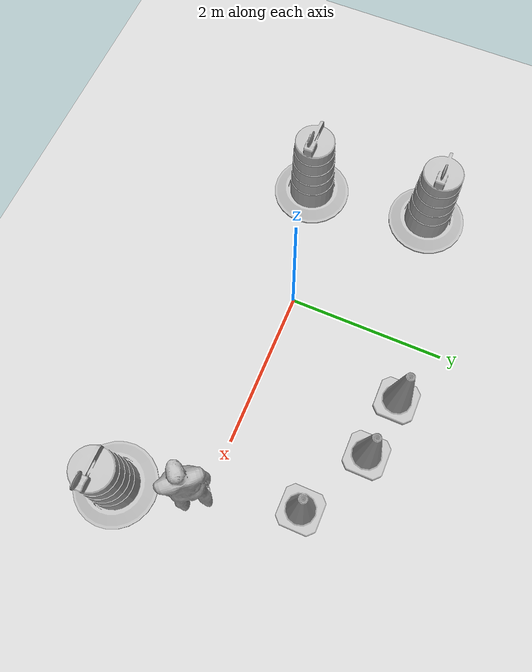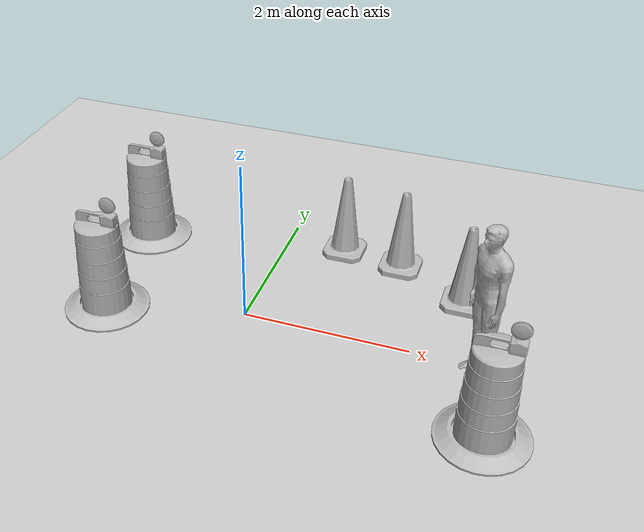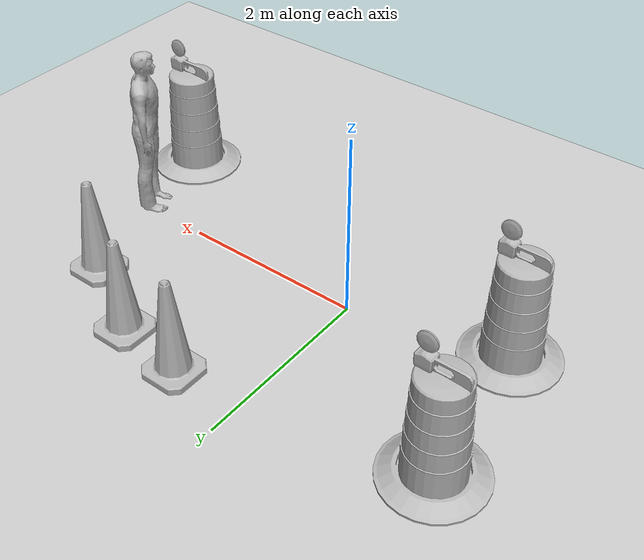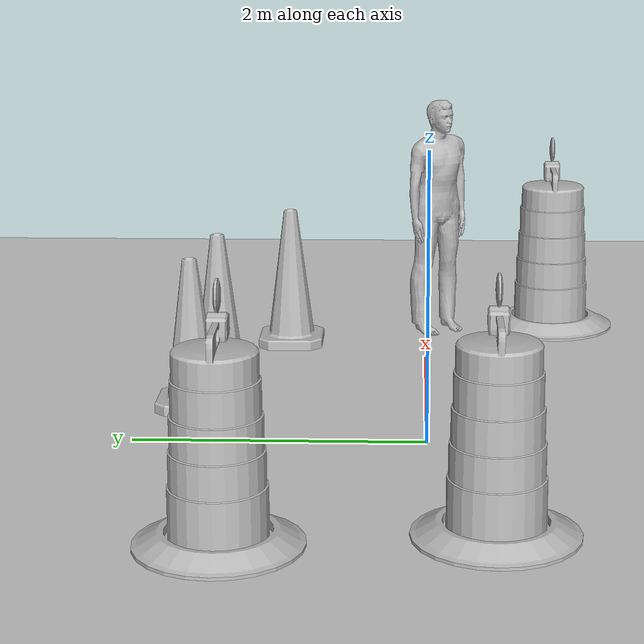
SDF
<sdf version="1.7">
 <world name="default">
  <light name="sun" type="directional">
   <pose>0 0 10 0 -0 0</pose>
   <diffuse>0.8 0.8 0.8 1</diffuse>
   <specular>0.2 0.2 0.2 1</specular>
   <attenuation>
    <range>1000</range>
    <constant>0.9</constant>
    <linear>0.01</linear>
    <quadratic>0.001</quadratic>
   </attenuation>
   <direction>-0.5 0.1 -0.9</direction>
   <spot><inner_angle>0</inner_angle><outer_angle>0</outer_angle><falloff>0</falloff></spot>
  </light>
  <model name="ground_plane">
   <static>1</static>
   <link name="link">
    <collision name="collision">
     <geometry><plane><normal>0 0 1</normal><size>100 100</size></plane></geometry>
     <surface>
      <contact><collide_bitmask>65535</collide_bitmask></contact>
      <friction><ode><mu>100</mu><mu2>50</mu2></ode></friction>
     </surface>
    </collision>
    <visual name="visual">
     <cast_shadows>0</cast_shadows>
     <geometry><plane><normal>0 0 1</normal><size>100 100</size></plane></geometry>
     <material>
      <script><uri>file://media/materials/scripts/gazebo.material</uri><name>Gazebo/Grey</name></script>
     </material>
    </visual>
   </link>
  </model>
  <gravity>0 0 -9.8</gravity>
  <magnetic_field>6e-06 2.3e-05 -4.2e-05</magnetic_field>
  <atmosphere type="adiabatic"/>
  <physics type="ode">
   <max_step_size>0.001</max_step_size>
   <real_time_factor>1</real_time_factor>
   <real_time_update_rate>1000</real_time_update_rate>
  </physics>
  <scene><ambient>0.4 0.4 0.4 1</ambient><background>0.7 0.7 0.7 1</background><shadows>1</shadows></scene>
  <audio><device>default</device></audio>
  <spherical_coordinates>
   <surface_model>EARTH_WGS84</surface_model>
   <latitude_deg>0</latitude_deg>
   <longitude_deg>0</longitude_deg>
   <elevation>0</elevation>
   <heading_deg>0</heading_deg>
  </spherical_coordinates>
  <model name="Construction Barrel">
   <link name="link">
    <inertial>
     <pose>0 0 0.4 0 -0 0</pose>
     <mass>500</mass>
     <inertia><ixx>51.2096</ixx><iyy>51.2096</iyy><izz>25</izz><ixy>0</ixy><ixz>0</ixz><iyz>0</iyz></inertia>
    </inertial>
    <collision name="collision">
     <geometry><mesh><uri>model://construction_barrel/meshes/construction_barrel.dae</uri></mesh></geometry>
    </collision>
    <visual name="visual">
     <geometry><mesh><uri>model://construction_barrel/meshes/construction_barrel.dae</uri></mesh></geometry>
    </visual>
   </link>
   <pose>-1.79656 1.21312 -1e-06 1e-06 -2e-06 -2.5e-05</pose>
  </model>
  <model name="Construction Cone">
   <link name="link">
    <collision name="collision">
     <geometry>
      <mesh><scale>10 10 10</scale><uri>model://construction_cone/meshes/construction_cone.dae</uri></mesh>
     </geometry>
    </collision>
    <visual name="visual">
     <geometry>
      <mesh><scale>10 10 10</scale><uri>model://construction_cone/meshes/construction_cone.dae</uri></mesh>
     </geometry>
    </visual>
    <inertial>
     <inertia><ixx>1</ixx><ixy>0</ixy><ixz>0</ixz><iyy>1</iyy><iyz>0</iyz><izz>1</izz></inertia>
     <mass>1</mass>
    </inertial>
   </link>
   <pose>0.751107 1.67998 -6e-06 2e-06 -0 0</pose>
  </model>
  <model name="Construction Cone_clone">
   <link name="link">
    <collision name="collision">
     <geometry>
      <mesh><scale>10 10 10</scale><uri>model://construction_cone/meshes/construction_cone.dae</uri></mesh>
     </geometry>
    </collision>
    <visual name="visual">
     <geometry>
      <mesh><scale>10 10 10</scale><uri>model://construction_cone/meshes/construction_cone.dae</uri></mesh>
     </geometry>
    </visual>
    <inertial>
     <inertia><ixx>1</ixx><ixy>0</ixy><ixz>0</ixz><iyy>1</iyy><iyz>0</iyz><izz>1</izz></inertia>
     <mass>1</mass>
    </inertial>
   </link>
   <pose>1.52083 1.56838 -6e-06 -4e-06 0 0</pose>
  </model>
  <model name="Construction Cone_clone_0">
   <link name="link">
    <collision name="collision">
     <geometry>
      <mesh><scale>10 10 10</scale><uri>model://construction_cone/meshes/construction_cone.dae</uri></mesh>
     </geometry>
    </collision>
    <visual name="visual">
     <geometry>
      <mesh><scale>10 10 10</scale><uri>model://construction_cone/meshes/construction_cone.dae</uri></mesh>
     </geometry>
    </visual>
    <inertial>
     <inertia><ixx>1</ixx><ixy>0</ixy><ixz>0</ixz><iyy>1</iyy><iyz>0</iyz><izz>1</izz></inertia>
     <mass>1</mass>
    </inertial>
   </link>
   <pose>2.40702 1.08353 -0 0 -1e-06 0</pose>
  </model>
  <model name="Construction Barrel_clone">
   <link name="link">
    <inertial>
     <pose>0 0 0.4 0 -0 0</pose>
     <mass>500</mass>
     <inertia><ixx>51.2096</ixx><iyy>51.2096</iyy><izz>25</izz><ixy>0</ixy><ixz>0</ixz><iyz>0</iyz></inertia>
    </inertial>
    <collision name="collision">
     <geometry><mesh><uri>model://construction_barrel/meshes/construction_barrel.dae</uri></mesh></geometry>
    </collision>
    <visual name="visual">
     <geometry><mesh><uri>model://construction_barrel/meshes/construction_barrel.dae</uri></mesh></geometry>
    </visual>
   </link>
   <pose>-1.61875 -0.398288 -0 0 -0 -2.8e-05</pose>
  </model>
  <model name="Construction Barrel_clone_0">
   <link name="link">
    <inertial>
     <pose>0 0 0.4 0 -0 0</pose>
     <mass>500</mass>
     <inertia><ixx>51.2096</ixx><iyy>51.2096</iyy><izz>25</izz><ixy>0</ixy><ixz>0</ixz><iyz>0</iyz></inertia>
    </inertial>
    <collision name="collision">
     <geometry><mesh><uri>model://construction_barrel/meshes/construction_barrel.dae</uri></mesh></geometry>
    </collision>
    <visual name="visual">
     <geometry><mesh><uri>model://construction_barrel/meshes/construction_barrel.dae</uri></mesh></geometry>
    </visual>
   </link>
   <pose>2.98152 -1.03535 -2e-06 7e-06 -2e-06 -2.7e-05</pose>
  </model>
  <model name="person_standing">
   <link name="link">
    <inertial>
     <pose>0 -0.1 0.95 0 -0 0</pose>
     <mass>80</mass>
     <inertia><ixx>24.88</ixx><ixy>0</ixy><ixz>0</ixz><iyy>25.73</iyy><iyz>0</iyz><izz>2.48</izz></inertia>
    </inertial>
    <collision name="bottom">
     <pose>0 -0.1 0.01 0 -0 0</pose>
     <geometry><box><size>0.5 0.35 0.02</size></box></geometry>
    </collision>
    <collision name="person">
     <pose>0 0 0.02 0.04 -0 0</pose>
     <geometry><mesh><uri>model://person_standing/meshes/standing.dae</uri></mesh></geometry>
    </collision>
    <visual name="visual">
     <pose>0 0 0.02 0.04 -0 0</pose>
     <geometry><mesh><uri>model://person_standing/meshes/standing.dae</uri></mesh></geometry>
    </visual>
   </link>
   <pose>2.82407 -0.040518 0 -0 1e-06 -0.975303</pose>
  </model>
 </world>
</sdf>
